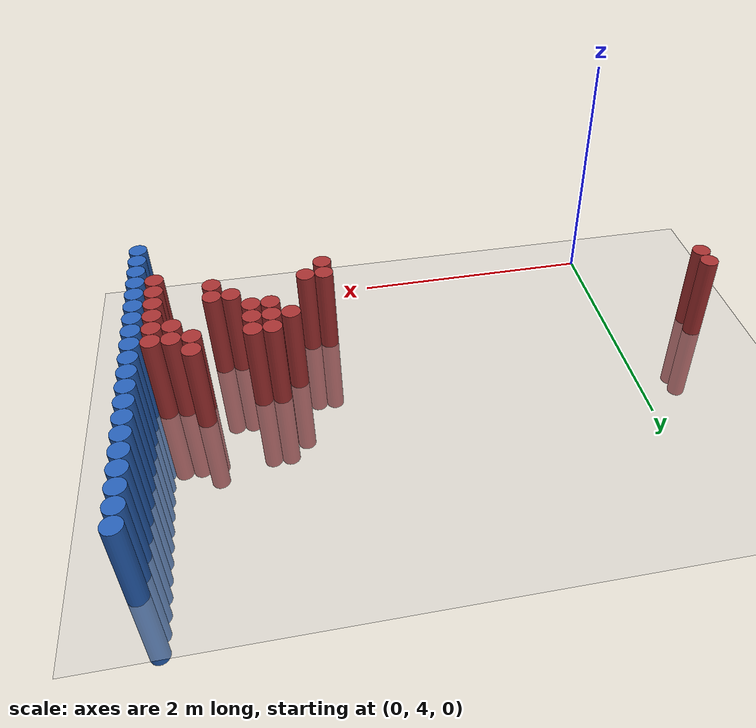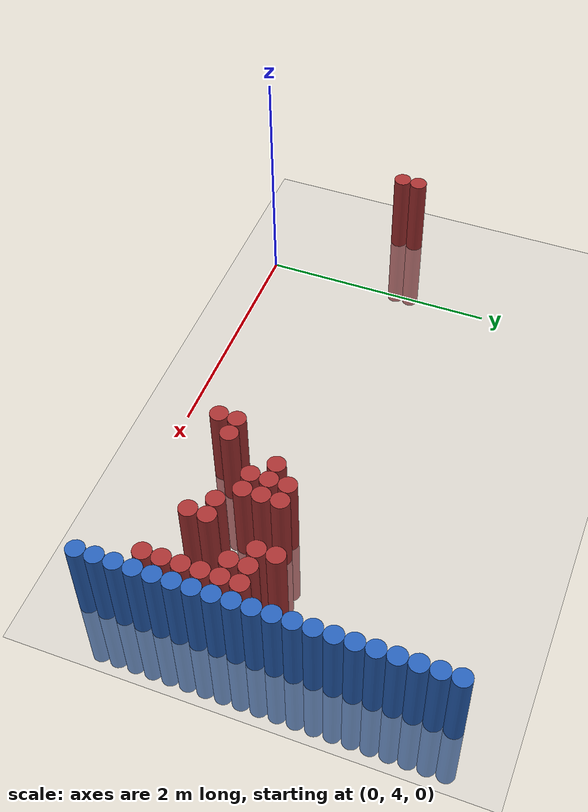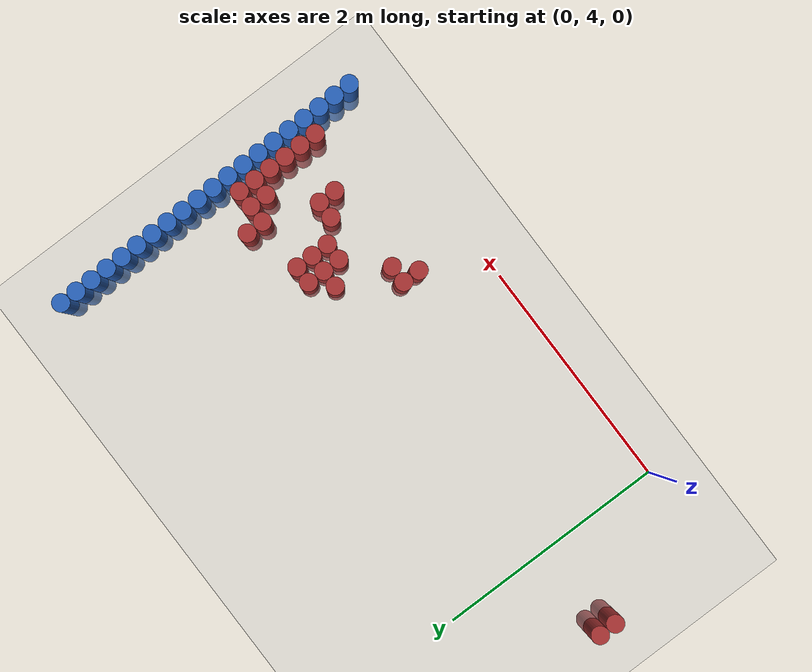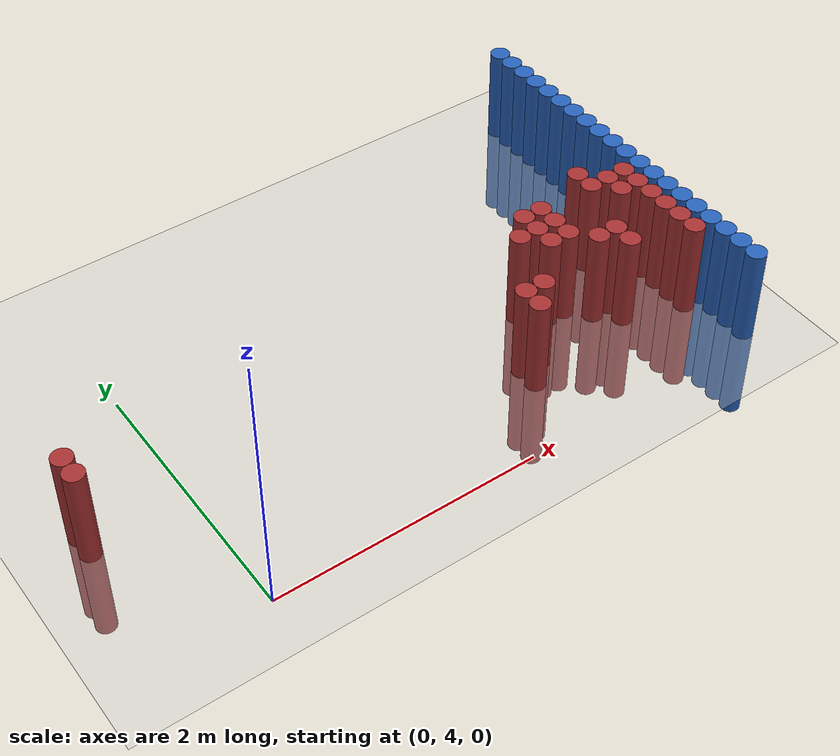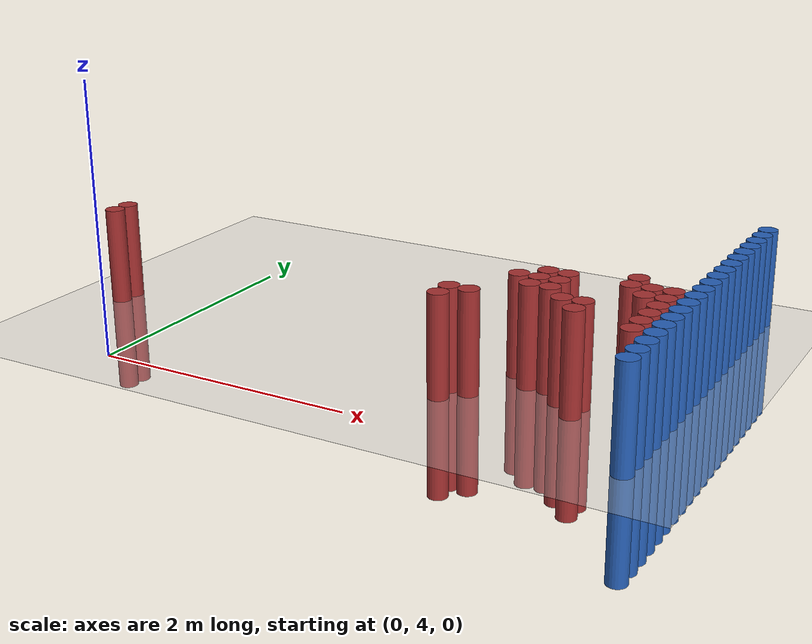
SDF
<sdf version="1.6">
 <world name="default">
  <model name="ground_plane">
   <static>1</static>
   <link name="link">
    <collision name="collision">
     <geometry><plane><normal>0 0 1</normal><size>100 100</size></plane></geometry>
     <surface><friction><ode><mu>100</mu><mu2>50</mu2></ode></friction></surface>
    </collision>
    <visual name="visual">
     <cast_shadows>0</cast_shadows>
     <geometry><plane><normal>0 0 1</normal><size>100 100</size></plane></geometry>
     <material>
      <script><uri>file://media/materials/scripts/gazebo.material</uri><name>Gazebo/Grey</name></script>
     </material>
    </visual>
   </link>
  </model>
  <model name="unit_cylinder_170">
   <static>1</static>
   <pose>3.925000 4.225000 0.000000 0.000000 0.000000 0.000000</pose>
   <link name="link">
    <inertial>
     <mass>1</mass>
     <inertia><ixx>0.145833</ixx><ixy>0</ixy><ixz>0</ixz><iyy>0.145833</iyy><iyz>0</iyz><izz>0.125</izz></inertia>
    </inertial>
    <collision name="collision">
     <geometry><cylinder><radius>0.075000</radius><length>1.5</length></cylinder></geometry>
    </collision>
    <visual name="visual">
     <geometry><cylinder><radius>0.075000</radius><length>1.5</length></cylinder></geometry>
     <material>
      <ambient>0.152000 0.379000 0.720000 1</ambient>
      <diffuse>0.152000 0.379000 0.720000 1</diffuse>
     </material>
     <material>
      <script><name>Gazebo/Grey</name><uri>file://media/materials/scripts/gazebo.material</uri></script>
     </material>
    </visual>
   </link>
  </model>
  <model name="unit_cylinder_172">
   <static>1</static>
   <pose>3.925000 4.375000 0.000000 0.000000 0.000000 0.000000</pose>
   <link name="link">
    <inertial>
     <mass>1</mass>
     <inertia><ixx>0.145833</ixx><ixy>0</ixy><ixz>0</ixz><iyy>0.145833</iyy><iyz>0</iyz><izz>0.125</izz></inertia>
    </inertial>
    <collision name="collision">
     <geometry><cylinder><radius>0.075000</radius><length>1.5</length></cylinder></geometry>
    </collision>
    <visual name="visual">
     <geometry><cylinder><radius>0.075000</radius><length>1.5</length></cylinder></geometry>
     <material>
      <ambient>0.152000 0.379000 0.720000 1</ambient>
      <diffuse>0.152000 0.379000 0.720000 1</diffuse>
     </material>
     <material>
      <script><name>Gazebo/Grey</name><uri>file://media/materials/scripts/gazebo.material</uri></script>
     </material>
    </visual>
   </link>
  </model>
  <model name="unit_cylinder_174">
   <static>1</static>
   <pose>3.925000 4.525000 0.000000 0.000000 0.000000 0.000000</pose>
   <link name="link">
    <inertial>
     <mass>1</mass>
     <inertia><ixx>0.145833</ixx><ixy>0</ixy><ixz>0</ixz><iyy>0.145833</iyy><iyz>0</iyz><izz>0.125</izz></inertia>
    </inertial>
    <collision name="collision">
     <geometry><cylinder><radius>0.075000</radius><length>1.5</length></cylinder></geometry>
    </collision>
    <visual name="visual">
     <geometry><cylinder><radius>0.075000</radius><length>1.5</length></cylinder></geometry>
     <material>
      <ambient>0.152000 0.379000 0.720000 1</ambient>
      <diffuse>0.152000 0.379000 0.720000 1</diffuse>
     </material>
     <material>
      <script><name>Gazebo/Grey</name><uri>file://media/materials/scripts/gazebo.material</uri></script>
     </material>
    </visual>
   </link>
  </model>
  <model name="unit_cylinder_176">
   <static>1</static>
   <pose>3.925000 4.675000 0.000000 0.000000 0.000000 0.000000</pose>
   <link name="link">
    <inertial>
     <mass>1</mass>
     <inertia><ixx>0.145833</ixx><ixy>0</ixy><ixz>0</ixz><iyy>0.145833</iyy><iyz>0</iyz><izz>0.125</izz></inertia>
    </inertial>
    <collision name="collision">
     <geometry><cylinder><radius>0.075000</radius><length>1.5</length></cylinder></geometry>
    </collision>
    <visual name="visual">
     <geometry><cylinder><radius>0.075000</radius><length>1.5</length></cylinder></geometry>
     <material>
      <ambient>0.152000 0.379000 0.720000 1</ambient>
      <diffuse>0.152000 0.379000 0.720000 1</diffuse>
     </material>
     <material>
      <script><name>Gazebo/Grey</name><uri>file://media/materials/scripts/gazebo.material</uri></script>
     </material>
    </visual>
   </link>
  </model>
  <model name="unit_cylinder_178">
   <static>1</static>
   <pose>3.925000 4.825000 0.000000 0.000000 0.000000 0.000000</pose>
   <link name="link">
    <inertial>
     <mass>1</mass>
     <inertia><ixx>0.145833</ixx><ixy>0</ixy><ixz>0</ixz><iyy>0.145833</iyy><iyz>0</iyz><izz>0.125</izz></inertia>
    </inertial>
    <collision name="collision">
     <geometry><cylinder><radius>0.075000</radius><length>1.5</length></cylinder></geometry>
    </collision>
    <visual name="visual">
     <geometry><cylinder><radius>0.075000</radius><length>1.5</length></cylinder></geometry>
     <material>
      <ambient>0.152000 0.379000 0.720000 1</ambient>
      <diffuse>0.152000 0.379000 0.720000 1</diffuse>
     </material>
     <material>
      <script><name>Gazebo/Grey</name><uri>file://media/materials/scripts/gazebo.material</uri></script>
     </material>
    </visual>
   </link>
  </model>
  <model name="unit_cylinder_180">
   <static>1</static>
   <pose>3.925000 4.975000 0.000000 0.000000 0.000000 0.000000</pose>
   <link name="link">
    <inertial>
     <mass>1</mass>
     <inertia><ixx>0.145833</ixx><ixy>0</ixy><ixz>0</ixz><iyy>0.145833</iyy><iyz>0</iyz><izz>0.125</izz></inertia>
    </inertial>
    <collision name="collision">
     <geometry><cylinder><radius>0.075000</radius><length>1.5</length></cylinder></geometry>
    </collision>
    <visual name="visual">
     <geometry><cylinder><radius>0.075000</radius><length>1.5</length></cylinder></geometry>
     <material>
      <ambient>0.152000 0.379000 0.720000 1</ambient>
      <diffuse>0.152000 0.379000 0.720000 1</diffuse>
     </material>
     <material>
      <script><name>Gazebo/Grey</name><uri>file://media/materials/scripts/gazebo.material</uri></script>
     </material>
    </visual>
   </link>
  </model>
  <model name="unit_cylinder_182">
   <static>1</static>
   <pose>3.925000 5.125000 0.000000 0.000000 0.000000 0.000000</pose>
   <link name="link">
    <inertial>
     <mass>1</mass>
     <inertia><ixx>0.145833</ixx><ixy>0</ixy><ixz>0</ixz><iyy>0.145833</iyy><iyz>0</iyz><izz>0.125</izz></inertia>
    </inertial>
    <collision name="collision">
     <geometry><cylinder><radius>0.075000</radius><length>1.5</length></cylinder></geometry>
    </collision>
    <visual name="visual">
     <geometry><cylinder><radius>0.075000</radius><length>1.5</length></cylinder></geometry>
     <material>
      <ambient>0.152000 0.379000 0.720000 1</ambient>
      <diffuse>0.152000 0.379000 0.720000 1</diffuse>
     </material>
     <material>
      <script><name>Gazebo/Grey</name><uri>file://media/materials/scripts/gazebo.material</uri></script>
     </material>
    </visual>
   </link>
  </model>
  <model name="unit_cylinder_184">
   <static>1</static>
   <pose>3.925000 5.275000 0.000000 0.000000 0.000000 0.000000</pose>
   <link name="link">
    <inertial>
     <mass>1</mass>
     <inertia><ixx>0.145833</ixx><ixy>0</ixy><ixz>0</ixz><iyy>0.145833</iyy><iyz>0</iyz><izz>0.125</izz></inertia>
    </inertial>
    <collision name="collision">
     <geometry><cylinder><radius>0.075000</radius><length>1.5</length></cylinder></geometry>
    </collision>
    <visual name="visual">
     <geometry><cylinder><radius>0.075000</radius><length>1.5</length></cylinder></geometry>
     <material>
      <ambient>0.152000 0.379000 0.720000 1</ambient>
      <diffuse>0.152000 0.379000 0.720000 1</diffuse>
     </material>
     <material>
      <script><name>Gazebo/Grey</name><uri>file://media/materials/scripts/gazebo.material</uri></script>
     </material>
    </visual>
   </link>
  </model>
  <model name="unit_cylinder_186">
   <static>1</static>
   <pose>3.925000 5.425000 0.000000 0.000000 0.000000 0.000000</pose>
   <link name="link">
    <inertial>
     <mass>1</mass>
     <inertia><ixx>0.145833</ixx><ixy>0</ixy><ixz>0</ixz><iyy>0.145833</iyy><iyz>0</iyz><izz>0.125</izz></inertia>
    </inertial>
    <collision name="collision">
     <geometry><cylinder><radius>0.075000</radius><length>1.5</length></cylinder></geometry>
    </collision>
    <visual name="visual">
     <geometry><cylinder><radius>0.075000</radius><length>1.5</length></cylinder></geometry>
     <material>
      <ambient>0.152000 0.379000 0.720000 1</ambient>
      <diffuse>0.152000 0.379000 0.720000 1</diffuse>
     </material>
     <material>
      <script><name>Gazebo/Grey</name><uri>file://media/materials/scripts/gazebo.material</uri></script>
     </material>
    </visual>
   </link>
  </model>
  <model name="unit_cylinder_188">
   <static>1</static>
   <pose>3.925000 5.575000 0.000000 0.000000 0.000000 0.000000</pose>
   <link name="link">
    <inertial>
     <mass>1</mass>
     <inertia><ixx>0.145833</ixx><ixy>0</ixy><ixz>0</ixz><iyy>0.145833</iyy><iyz>0</iyz><izz>0.125</izz></inertia>
    </inertial>
    <collision name="collision">
     <geometry><cylinder><radius>0.075000</radius><length>1.5</length></cylinder></geometry>
    </collision>
    <visual name="visual">
     <geometry><cylinder><radius>0.075000</radius><length>1.5</length></cylinder></geometry>
     <material>
      <ambient>0.152000 0.379000 0.720000 1</ambient>
      <diffuse>0.152000 0.379000 0.720000 1</diffuse>
     </material>
     <material>
      <script><name>Gazebo/Grey</name><uri>file://media/materials/scripts/gazebo.material</uri></script>
     </material>
    </visual>
   </link>
  </model>
  <model name="unit_cylinder_190">
   <static>1</static>
   <pose>3.925000 5.725000 0.000000 0.000000 0.000000 0.000000</pose>
   <link name="link">
    <inertial>
     <mass>1</mass>
     <inertia><ixx>0.145833</ixx><ixy>0</ixy><ixz>0</ixz><iyy>0.145833</iyy><iyz>0</iyz><izz>0.125</izz></inertia>
    </inertial>
    <collision name="collision">
     <geometry><cylinder><radius>0.075000</radius><length>1.5</length></cylinder></geometry>
    </collision>
    <visual name="visual">
     <geometry><cylinder><radius>0.075000</radius><length>1.5</length></cylinder></geometry>
     <material>
      <ambient>0.152000 0.379000 0.720000 1</ambient>
      <diffuse>0.152000 0.379000 0.720000 1</diffuse>
     </material>
     <material>
      <script><name>Gazebo/Grey</name><uri>file://media/materials/scripts/gazebo.material</uri></script>
     </material>
    </visual>
   </link>
  </model>
  <model name="unit_cylinder_192">
   <static>1</static>
   <pose>3.925000 5.875000 0.000000 0.000000 0.000000 0.000000</pose>
   <link name="link">
    <inertial>
     <mass>1</mass>
     <inertia><ixx>0.145833</ixx><ixy>0</ixy><ixz>0</ixz><iyy>0.145833</iyy><iyz>0</iyz><izz>0.125</izz></inertia>
    </inertial>
    <collision name="collision">
     <geometry><cylinder><radius>0.075000</radius><length>1.5</length></cylinder></geometry>
    </collision>
    <visual name="visual">
     <geometry><cylinder><radius>0.075000</radius><length>1.5</length></cylinder></geometry>
     <material>
      <ambient>0.152000 0.379000 0.720000 1</ambient>
      <diffuse>0.152000 0.379000 0.720000 1</diffuse>
     </material>
     <material>
      <script><name>Gazebo/Grey</name><uri>file://media/materials/scripts/gazebo.material</uri></script>
     </material>
    </visual>
   </link>
  </model>
  <model name="unit_cylinder_194">
   <static>1</static>
   <pose>3.925000 6.025000 0.000000 0.000000 0.000000 0.000000</pose>
   <link name="link">
    <inertial>
     <mass>1</mass>
     <inertia><ixx>0.145833</ixx><ixy>0</ixy><ixz>0</ixz><iyy>0.145833</iyy><iyz>0</iyz><izz>0.125</izz></inertia>
    </inertial>
    <collision name="collision">
     <geometry><cylinder><radius>0.075000</radius><length>1.5</length></cylinder></geometry>
    </collision>
    <visual name="visual">
     <geometry><cylinder><radius>0.075000</radius><length>1.5</length></cylinder></geometry>
     <material>
      <ambient>0.152000 0.379000 0.720000 1</ambient>
      <diffuse>0.152000 0.379000 0.720000 1</diffuse>
     </material>
     <material>
      <script><name>Gazebo/Grey</name><uri>file://media/materials/scripts/gazebo.material</uri></script>
     </material>
    </visual>
   </link>
  </model>
  <model name="unit_cylinder_196">
   <static>1</static>
   <pose>3.925000 6.175000 0.000000 0.000000 0.000000 0.000000</pose>
   <link name="link">
    <inertial>
     <mass>1</mass>
     <inertia><ixx>0.145833</ixx><ixy>0</ixy><ixz>0</ixz><iyy>0.145833</iyy><iyz>0</iyz><izz>0.125</izz></inertia>
    </inertial>
    <collision name="collision">
     <geometry><cylinder><radius>0.075000</radius><length>1.5</length></cylinder></geometry>
    </collision>
    <visual name="visual">
     <geometry><cylinder><radius>0.075000</radius><length>1.5</length></cylinder></geometry>
     <material>
      <ambient>0.152000 0.379000 0.720000 1</ambient>
      <diffuse>0.152000 0.379000 0.720000 1</diffuse>
     </material>
     <material>
      <script><name>Gazebo/Grey</name><uri>file://media/materials/scripts/gazebo.material</uri></script>
     </material>
    </visual>
   </link>
  </model>
  <model name="unit_cylinder_198">
   <static>1</static>
   <pose>3.925000 6.325000 0.000000 0.000000 0.000000 0.000000</pose>
   <link name="link">
    <inertial>
     <mass>1</mass>
     <inertia><ixx>0.145833</ixx><ixy>0</ixy><ixz>0</ixz><iyy>0.145833</iyy><iyz>0</iyz><izz>0.125</izz></inertia>
    </inertial>
    <collision name="collision">
     <geometry><cylinder><radius>0.075000</radius><length>1.5</length></cylinder></geometry>
    </collision>
    <visual name="visual">
     <geometry><cylinder><radius>0.075000</radius><length>1.5</length></cylinder></geometry>
     <material>
      <ambient>0.152000 0.379000 0.720000 1</ambient>
      <diffuse>0.152000 0.379000 0.720000 1</diffuse>
     </material>
     <material>
      <script><name>Gazebo/Grey</name><uri>file://media/materials/scripts/gazebo.material</uri></script>
     </material>
    </visual>
   </link>
  </model>
  <model name="unit_cylinder_200">
   <static>1</static>
   <pose>3.925000 6.475000 0.000000 0.000000 0.000000 0.000000</pose>
   <link name="link">
    <inertial>
     <mass>1</mass>
     <inertia><ixx>0.145833</ixx><ixy>0</ixy><ixz>0</ixz><iyy>0.145833</iyy><iyz>0</iyz><izz>0.125</izz></inertia>
    </inertial>
    <collision name="collision">
     <geometry><cylinder><radius>0.075000</radius><length>1.5</length></cylinder></geometry>
    </collision>
    <visual name="visual">
     <geometry><cylinder><radius>0.075000</radius><length>1.5</length></cylinder></geometry>
     <material>
      <ambient>0.152000 0.379000 0.720000 1</ambient>
      <diffuse>0.152000 0.379000 0.720000 1</diffuse>
     </material>
     <material>
      <script><name>Gazebo/Grey</name><uri>file://media/materials/scripts/gazebo.material</uri></script>
     </material>
    </visual>
   </link>
  </model>
  <model name="unit_cylinder_202">
   <static>1</static>
   <pose>3.925000 6.625000 0.000000 0.000000 0.000000 0.000000</pose>
   <link name="link">
    <inertial>
     <mass>1</mass>
     <inertia><ixx>0.145833</ixx><ixy>0</ixy><ixz>0</ixz><iyy>0.145833</iyy><iyz>0</iyz><izz>0.125</izz></inertia>
    </inertial>
    <collision name="collision">
     <geometry><cylinder><radius>0.075000</radius><length>1.5</length></cylinder></geometry>
    </collision>
    <visual name="visual">
     <geometry><cylinder><radius>0.075000</radius><length>1.5</length></cylinder></geometry>
     <material>
      <ambient>0.152000 0.379000 0.720000 1</ambient>
      <diffuse>0.152000 0.379000 0.720000 1</diffuse>
     </material>
     <material>
      <script><name>Gazebo/Grey</name><uri>file://media/materials/scripts/gazebo.material</uri></script>
     </material>
    </visual>
   </link>
  </model>
  <model name="unit_cylinder_204">
   <static>1</static>
   <pose>3.925000 6.775000 0.000000 0.000000 0.000000 0.000000</pose>
   <link name="link">
    <inertial>
     <mass>1</mass>
     <inertia><ixx>0.145833</ixx><ixy>0</ixy><ixz>0</ixz><iyy>0.145833</iyy><iyz>0</iyz><izz>0.125</izz></inertia>
    </inertial>
    <collision name="collision">
     <geometry><cylinder><radius>0.075000</radius><length>1.5</length></cylinder></geometry>
    </collision>
    <visual name="visual">
     <geometry><cylinder><radius>0.075000</radius><length>1.5</length></cylinder></geometry>
     <material>
      <ambient>0.152000 0.379000 0.720000 1</ambient>
      <diffuse>0.152000 0.379000 0.720000 1</diffuse>
     </material>
     <material>
      <script><name>Gazebo/Grey</name><uri>file://media/materials/scripts/gazebo.material</uri></script>
     </material>
    </visual>
   </link>
  </model>
  <model name="unit_cylinder_206">
   <static>1</static>
   <pose>3.925000 6.925000 0.000000 0.000000 0.000000 0.000000</pose>
   <link name="link">
    <inertial>
     <mass>1</mass>
     <inertia><ixx>0.145833</ixx><ixy>0</ixy><ixz>0</ixz><iyy>0.145833</iyy><iyz>0</iyz><izz>0.125</izz></inertia>
    </inertial>
    <collision name="collision">
     <geometry><cylinder><radius>0.075000</radius><length>1.5</length></cylinder></geometry>
    </collision>
    <visual name="visual">
     <geometry><cylinder><radius>0.075000</radius><length>1.5</length></cylinder></geometry>
     <material>
      <ambient>0.152000 0.379000 0.720000 1</ambient>
      <diffuse>0.152000 0.379000 0.720000 1</diffuse>
     </material>
     <material>
      <script><name>Gazebo/Grey</name><uri>file://media/materials/scripts/gazebo.material</uri></script>
     </material>
    </visual>
   </link>
  </model>
  <model name="unit_cylinder_315">
   <static>1</static>
   <pose>-0.725000 4.975000 0.000000 0.000000 0.000000 0.000000</pose>
   <link name="link">
    <inertial>
     <mass>1</mass>
     <inertia><ixx>0.145833</ixx><ixy>0</ixy><ixz>0</ixz><iyy>0.145833</iyy><iyz>0</iyz><izz>0.125</izz></inertia>
    </inertial>
    <collision name="collision">
     <geometry><cylinder><radius>0.075000</radius><length>1.5</length></cylinder></geometry>
    </collision>
    <visual name="visual">
     <geometry><cylinder><radius>0.075000</radius><length>1.5</length></cylinder></geometry>
     <material>
      <ambient>0.648000 0.192000 0.192000 1</ambient>
      <diffuse>0.648000 0.192000 0.192000 1</diffuse>
     </material>
     <material>
      <script><name>Gazebo/Grey</name><uri>file://media/materials/scripts/gazebo.material</uri></script>
     </material>
    </visual>
   </link>
  </model>
  <model name="unit_cylinder_316">
   <static>1</static>
   <pose>-0.725000 5.125000 0.000000 0.000000 0.000000 0.000000</pose>
   <link name="link">
    <inertial>
     <mass>1</mass>
     <inertia><ixx>0.145833</ixx><ixy>0</ixy><ixz>0</ixz><iyy>0.145833</iyy><iyz>0</iyz><izz>0.125</izz></inertia>
    </inertial>
    <collision name="collision">
     <geometry><cylinder><radius>0.075000</radius><length>1.5</length></cylinder></geometry>
    </collision>
    <visual name="visual">
     <geometry><cylinder><radius>0.075000</radius><length>1.5</length></cylinder></geometry>
     <material>
      <ambient>0.648000 0.192000 0.192000 1</ambient>
      <diffuse>0.648000 0.192000 0.192000 1</diffuse>
     </material>
     <material>
      <script><name>Gazebo/Grey</name><uri>file://media/materials/scripts/gazebo.material</uri></script>
     </material>
    </visual>
   </link>
  </model>
  <model name="unit_cylinder_395">
   <static>1</static>
   <pose>2.425000 4.525000 0.000000 0.000000 0.000000 0.000000</pose>
   <link name="link">
    <inertial>
     <mass>1</mass>
     <inertia><ixx>0.145833</ixx><ixy>0</ixy><ixz>0</ixz><iyy>0.145833</iyy><iyz>0</iyz><izz>0.125</izz></inertia>
    </inertial>
    <collision name="collision">
     <geometry><cylinder><radius>0.075000</radius><length>1.5</length></cylinder></geometry>
    </collision>
    <visual name="visual">
     <geometry><cylinder><radius>0.075000</radius><length>1.5</length></cylinder></geometry>
     <material>
      <ambient>0.648000 0.192000 0.192000 1</ambient>
      <diffuse>0.648000 0.192000 0.192000 1</diffuse>
     </material>
     <material>
      <script><name>Gazebo/Grey</name><uri>file://media/materials/scripts/gazebo.material</uri></script>
     </material>
    </visual>
   </link>
  </model>
  <model name="unit_cylinder_396">
   <static>1</static>
   <pose>2.425000 4.675000 0.000000 0.000000 0.000000 0.000000</pose>
   <link name="link">
    <inertial>
     <mass>1</mass>
     <inertia><ixx>0.145833</ixx><ixy>0</ixy><ixz>0</ixz><iyy>0.145833</iyy><iyz>0</iyz><izz>0.125</izz></inertia>
    </inertial>
    <collision name="collision">
     <geometry><cylinder><radius>0.075000</radius><length>1.5</length></cylinder></geometry>
    </collision>
    <visual name="visual">
     <geometry><cylinder><radius>0.075000</radius><length>1.5</length></cylinder></geometry>
     <material>
      <ambient>0.648000 0.192000 0.192000 1</ambient>
      <diffuse>0.648000 0.192000 0.192000 1</diffuse>
     </material>
     <material>
      <script><name>Gazebo/Grey</name><uri>file://media/materials/scripts/gazebo.material</uri></script>
     </material>
    </visual>
   </link>
  </model>
  <model name="unit_cylinder_397">
   <static>1</static>
   <pose>2.575000 4.675000 0.000000 0.000000 0.000000 0.000000</pose>
   <link name="link">
    <inertial>
     <mass>1</mass>
     <inertia><ixx>0.145833</ixx><ixy>0</ixy><ixz>0</ixz><iyy>0.145833</iyy><iyz>0</iyz><izz>0.125</izz></inertia>
    </inertial>
    <collision name="collision">
     <geometry><cylinder><radius>0.075000</radius><length>1.5</length></cylinder></geometry>
    </collision>
    <visual name="visual">
     <geometry><cylinder><radius>0.075000</radius><length>1.5</length></cylinder></geometry>
     <material>
      <ambient>0.648000 0.192000 0.192000 1</ambient>
      <diffuse>0.648000 0.192000 0.192000 1</diffuse>
     </material>
     <material>
      <script><name>Gazebo/Grey</name><uri>file://media/materials/scripts/gazebo.material</uri></script>
     </material>
    </visual>
   </link>
  </model>
  <model name="unit_cylinder_398">
   <static>1</static>
   <pose>2.725000 5.125000 0.000000 0.000000 0.000000 0.000000</pose>
   <link name="link">
    <inertial>
     <mass>1</mass>
     <inertia><ixx>0.145833</ixx><ixy>0</ixy><ixz>0</ixz><iyy>0.145833</iyy><iyz>0</iyz><izz>0.125</izz></inertia>
    </inertial>
    <collision name="collision">
     <geometry><cylinder><radius>0.075000</radius><length>1.5</length></cylinder></geometry>
    </collision>
    <visual name="visual">
     <geometry><cylinder><radius>0.075000</radius><length>1.5</length></cylinder></geometry>
     <material>
      <ambient>0.648000 0.192000 0.192000 1</ambient>
      <diffuse>0.648000 0.192000 0.192000 1</diffuse>
     </material>
     <material>
      <script><name>Gazebo/Grey</name><uri>file://media/materials/scripts/gazebo.material</uri></script>
     </material>
    </visual>
   </link>
  </model>
  <model name="unit_cylinder_400">
   <static>1</static>
   <pose>2.875000 4.975000 0.000000 0.000000 0.000000 0.000000</pose>
   <link name="link">
    <inertial>
     <mass>1</mass>
     <inertia><ixx>0.145833</ixx><ixy>0</ixy><ixz>0</ixz><iyy>0.145833</iyy><iyz>0</iyz><izz>0.125</izz></inertia>
    </inertial>
    <collision name="collision">
     <geometry><cylinder><radius>0.075000</radius><length>1.5</length></cylinder></geometry>
    </collision>
    <visual name="visual">
     <geometry><cylinder><radius>0.075000</radius><length>1.5</length></cylinder></geometry>
     <material>
      <ambient>0.648000 0.192000 0.192000 1</ambient>
      <diffuse>0.648000 0.192000 0.192000 1</diffuse>
     </material>
     <material>
      <script><name>Gazebo/Grey</name><uri>file://media/materials/scripts/gazebo.material</uri></script>
     </material>
    </visual>
   </link>
  </model>
  <model name="unit_cylinder_401">
   <static>1</static>
   <pose>2.875000 5.125000 0.000000 0.000000 0.000000 0.000000</pose>
   <link name="link">
    <inertial>
     <mass>1</mass>
     <inertia><ixx>0.145833</ixx><ixy>0</ixy><ixz>0</ixz><iyy>0.145833</iyy><iyz>0</iyz><izz>0.125</izz></inertia>
    </inertial>
    <collision name="collision">
     <geometry><cylinder><radius>0.075000</radius><length>1.5</length></cylinder></geometry>
    </collision>
    <visual name="visual">
     <geometry><cylinder><radius>0.075000</radius><length>1.5</length></cylinder></geometry>
     <material>
      <ambient>0.648000 0.192000 0.192000 1</ambient>
      <diffuse>0.648000 0.192000 0.192000 1</diffuse>
     </material>
     <material>
      <script><name>Gazebo/Grey</name><uri>file://media/materials/scripts/gazebo.material</uri></script>
     </material>
    </visual>
   </link>
  </model>
  <model name="unit_cylinder_402">
   <static>1</static>
   <pose>2.875000 5.275000 0.000000 0.000000 0.000000 0.000000</pose>
   <link name="link">
    <inertial>
     <mass>1</mass>
     <inertia><ixx>0.145833</ixx><ixy>0</ixy><ixz>0</ixz><iyy>0.145833</iyy><iyz>0</iyz><izz>0.125</izz></inertia>
    </inertial>
    <collision name="collision">
     <geometry><cylinder><radius>0.075000</radius><length>1.5</length></cylinder></geometry>
    </collision>
    <visual name="visual">
     <geometry><cylinder><radius>0.075000</radius><length>1.5</length></cylinder></geometry>
     <material>
      <ambient>0.648000 0.192000 0.192000 1</ambient>
      <diffuse>0.648000 0.192000 0.192000 1</diffuse>
     </material>
     <material>
      <script><name>Gazebo/Grey</name><uri>file://media/materials/scripts/gazebo.material</uri></script>
     </material>
    </visual>
   </link>
  </model>
  <model name="unit_cylinder_408">
   <static>1</static>
   <pose>3.025000 4.975000 0.000000 0.000000 0.000000 0.000000</pose>
   <link name="link">
    <inertial>
     <mass>1</mass>
     <inertia><ixx>0.145833</ixx><ixy>0</ixy><ixz>0</ixz><iyy>0.145833</iyy><iyz>0</iyz><izz>0.125</izz></inertia>
    </inertial>
    <collision name="collision">
     <geometry><cylinder><radius>0.075000</radius><length>1.5</length></cylinder></geometry>
    </collision>
    <visual name="visual">
     <geometry><cylinder><radius>0.075000</radius><length>1.5</length></cylinder></geometry>
     <material>
      <ambient>0.648000 0.192000 0.192000 1</ambient>
      <diffuse>0.648000 0.192000 0.192000 1</diffuse>
     </material>
     <material>
      <script><name>Gazebo/Grey</name><uri>file://media/materials/scripts/gazebo.material</uri></script>
     </material>
    </visual>
   </link>
  </model>
  <model name="unit_cylinder_409">
   <static>1</static>
   <pose>3.025000 5.125000 0.000000 0.000000 0.000000 0.000000</pose>
   <link name="link">
    <inertial>
     <mass>1</mass>
     <inertia><ixx>0.145833</ixx><ixy>0</ixy><ixz>0</ixz><iyy>0.145833</iyy><iyz>0</iyz><izz>0.125</izz></inertia>
    </inertial>
    <collision name="collision">
     <geometry><cylinder><radius>0.075000</radius><length>1.5</length></cylinder></geometry>
    </collision>
    <visual name="visual">
     <geometry><cylinder><radius>0.075000</radius><length>1.5</length></cylinder></geometry>
     <material>
      <ambient>0.648000 0.192000 0.192000 1</ambient>
      <diffuse>0.648000 0.192000 0.192000 1</diffuse>
     </material>
     <material>
      <script><name>Gazebo/Grey</name><uri>file://media/materials/scripts/gazebo.material</uri></script>
     </material>
    </visual>
   </link>
  </model>
  <model name="unit_cylinder_410">
   <static>1</static>
   <pose>3.025000 5.275000 0.000000 0.000000 0.000000 0.000000</pose>
   <link name="link">
    <inertial>
     <mass>1</mass>
     <inertia><ixx>0.145833</ixx><ixy>0</ixy><ixz>0</ixz><iyy>0.145833</iyy><iyz>0</iyz><izz>0.125</izz></inertia>
    </inertial>
    <collision name="collision">
     <geometry><cylinder><radius>0.075000</radius><length>1.5</length></cylinder></geometry>
    </collision>
    <visual name="visual">
     <geometry><cylinder><radius>0.075000</radius><length>1.5</length></cylinder></geometry>
     <material>
      <ambient>0.648000 0.192000 0.192000 1</ambient>
      <diffuse>0.648000 0.192000 0.192000 1</diffuse>
     </material>
     <material>
      <script><name>Gazebo/Grey</name><uri>file://media/materials/scripts/gazebo.material</uri></script>
     </material>
    </visual>
   </link>
  </model>
  <model name="unit_cylinder_414">
   <static>1</static>
   <pose>3.175000 4.825000 0.000000 0.000000 0.000000 0.000000</pose>
   <link name="link">
    <inertial>
     <mass>1</mass>
     <inertia><ixx>0.145833</ixx><ixy>0</ixy><ixz>0</ixz><iyy>0.145833</iyy><iyz>0</iyz><izz>0.125</izz></inertia>
    </inertial>
    <collision name="collision">
     <geometry><cylinder><radius>0.075000</radius><length>1.5</length></cylinder></geometry>
    </collision>
    <visual name="visual">
     <geometry><cylinder><radius>0.075000</radius><length>1.5</length></cylinder></geometry>
     <material>
      <ambient>0.648000 0.192000 0.192000 1</ambient>
      <diffuse>0.648000 0.192000 0.192000 1</diffuse>
     </material>
     <material>
      <script><name>Gazebo/Grey</name><uri>file://media/materials/scripts/gazebo.material</uri></script>
     </material>
    </visual>
   </link>
  </model>
  <model name="unit_cylinder_415">
   <static>1</static>
   <pose>3.325000 4.675000 0.000000 0.000000 0.000000 0.000000</pose>
   <link name="link">
    <inertial>
     <mass>1</mass>
     <inertia><ixx>0.145833</ixx><ixy>0</ixy><ixz>0</ixz><iyy>0.145833</iyy><iyz>0</iyz><izz>0.125</izz></inertia>
    </inertial>
    <collision name="collision">
     <geometry><cylinder><radius>0.075000</radius><length>1.5</length></cylinder></geometry>
    </collision>
    <visual name="visual">
     <geometry><cylinder><radius>0.075000</radius><length>1.5</length></cylinder></geometry>
     <material>
      <ambient>0.648000 0.192000 0.192000 1</ambient>
      <diffuse>0.648000 0.192000 0.192000 1</diffuse>
     </material>
     <material>
      <script><name>Gazebo/Grey</name><uri>file://media/materials/scripts/gazebo.material</uri></script>
     </material>
    </visual>
   </link>
  </model>
  <model name="unit_cylinder_416">
   <static>1</static>
   <pose>3.325000 4.825000 0.000000 0.000000 0.000000 0.000000</pose>
   <link name="link">
    <inertial>
     <mass>1</mass>
     <inertia><ixx>0.145833</ixx><ixy>0</ixy><ixz>0</ixz><iyy>0.145833</iyy><iyz>0</iyz><izz>0.125</izz></inertia>
    </inertial>
    <collision name="collision">
     <geometry><cylinder><radius>0.075000</radius><length>1.5</length></cylinder></geometry>
    </collision>
    <visual name="visual">
     <geometry><cylinder><radius>0.075000</radius><length>1.5</length></cylinder></geometry>
     <material>
      <ambient>0.648000 0.192000 0.192000 1</ambient>
      <diffuse>0.648000 0.192000 0.192000 1</diffuse>
     </material>
     <material>
      <script><name>Gazebo/Grey</name><uri>file://media/materials/scripts/gazebo.material</uri></script>
     </material>
    </visual>
   </link>
  </model>
  <model name="unit_cylinder_417">
   <static>1</static>
   <pose>3.475000 5.275000 0.000000 0.000000 0.000000 0.000000</pose>
   <link name="link">
    <inertial>
     <mass>1</mass>
     <inertia><ixx>0.145833</ixx><ixy>0</ixy><ixz>0</ixz><iyy>0.145833</iyy><iyz>0</iyz><izz>0.125</izz></inertia>
    </inertial>
    <collision name="collision">
     <geometry><cylinder><radius>0.075000</radius><length>1.5</length></cylinder></geometry>
    </collision>
    <visual name="visual">
     <geometry><cylinder><radius>0.075000</radius><length>1.5</length></cylinder></geometry>
     <material>
      <ambient>0.648000 0.192000 0.192000 1</ambient>
      <diffuse>0.648000 0.192000 0.192000 1</diffuse>
     </material>
     <material>
      <script><name>Gazebo/Grey</name><uri>file://media/materials/scripts/gazebo.material</uri></script>
     </material>
    </visual>
   </link>
  </model>
  <model name="unit_cylinder_418">
   <static>1</static>
   <pose>3.475000 5.425000 0.000000 0.000000 0.000000 0.000000</pose>
   <link name="link">
    <inertial>
     <mass>1</mass>
     <inertia><ixx>0.145833</ixx><ixy>0</ixy><ixz>0</ixz><iyy>0.145833</iyy><iyz>0</iyz><izz>0.125</izz></inertia>
    </inertial>
    <collision name="collision">
     <geometry><cylinder><radius>0.075000</radius><length>1.5</length></cylinder></geometry>
    </collision>
    <visual name="visual">
     <geometry><cylinder><radius>0.075000</radius><length>1.5</length></cylinder></geometry>
     <material>
      <ambient>0.648000 0.192000 0.192000 1</ambient>
      <diffuse>0.648000 0.192000 0.192000 1</diffuse>
     </material>
     <material>
      <script><name>Gazebo/Grey</name><uri>file://media/materials/scripts/gazebo.material</uri></script>
     </material>
    </visual>
   </link>
  </model>
  <model name="unit_cylinder_420">
   <static>1</static>
   <pose>3.625000 5.125000 0.000000 0.000000 0.000000 0.000000</pose>
   <link name="link">
    <inertial>
     <mass>1</mass>
     <inertia><ixx>0.145833</ixx><ixy>0</ixy><ixz>0</ixz><iyy>0.145833</iyy><iyz>0</iyz><izz>0.125</izz></inertia>
    </inertial>
    <collision name="collision">
     <geometry><cylinder><radius>0.075000</radius><length>1.5</length></cylinder></geometry>
    </collision>
    <visual name="visual">
     <geometry><cylinder><radius>0.075000</radius><length>1.5</length></cylinder></geometry>
     <material>
      <ambient>0.648000 0.192000 0.192000 1</ambient>
      <diffuse>0.648000 0.192000 0.192000 1</diffuse>
     </material>
     <material>
      <script><name>Gazebo/Grey</name><uri>file://media/materials/scripts/gazebo.material</uri></script>
     </material>
    </visual>
   </link>
  </model>
  <model name="unit_cylinder_421">
   <static>1</static>
   <pose>3.625000 5.275000 0.000000 0.000000 0.000000 0.000000</pose>
   <link name="link">
    <inertial>
     <mass>1</mass>
     <inertia><ixx>0.145833</ixx><ixy>0</ixy><ixz>0</ixz><iyy>0.145833</iyy><iyz>0</iyz><izz>0.125</izz></inertia>
    </inertial>
    <collision name="collision">
     <geometry><cylinder><radius>0.075000</radius><length>1.5</length></cylinder></geometry>
    </collision>
    <visual name="visual">
     <geometry><cylinder><radius>0.075000</radius><length>1.5</length></cylinder></geometry>
     <material>
      <ambient>0.648000 0.192000 0.192000 1</ambient>
      <diffuse>0.648000 0.192000 0.192000 1</diffuse>
     </material>
     <material>
      <script><name>Gazebo/Grey</name><uri>file://media/materials/scripts/gazebo.material</uri></script>
     </material>
    </visual>
   </link>
  </model>
  <model name="unit_cylinder_434">
   <static>1</static>
   <pose>3.775000 4.525000 0.000000 0.000000 0.000000 0.000000</pose>
   <link name="link">
    <inertial>
     <mass>1</mass>
     <inertia><ixx>0.145833</ixx><ixy>0</ixy><ixz>0</ixz><iyy>0.145833</iyy><iyz>0</iyz><izz>0.125</izz></inertia>
    </inertial>
    <collision name="collision">
     <geometry><cylinder><radius>0.075000</radius><length>1.5</length></cylinder></geometry>
    </collision>
    <visual name="visual">
     <geometry><cylinder><radius>0.075000</radius><length>1.5</length></cylinder></geometry>
     <material>
      <ambient>0.648000 0.192000 0.192000 1</ambient>
      <diffuse>0.648000 0.192000 0.192000 1</diffuse>
     </material>
     <material>
      <script><name>Gazebo/Grey</name><uri>file://media/materials/scripts/gazebo.material</uri></script>
     </material>
    </visual>
   </link>
  </model>
  <model name="unit_cylinder_435">
   <static>1</static>
   <pose>3.775000 4.675000 0.000000 0.000000 0.000000 0.000000</pose>
   <link name="link">
    <inertial>
     <mass>1</mass>
     <inertia><ixx>0.145833</ixx><ixy>0</ixy><ixz>0</ixz><iyy>0.145833</iyy><iyz>0</iyz><izz>0.125</izz></inertia>
    </inertial>
    <collision name="collision">
     <geometry><cylinder><radius>0.075000</radius><length>1.5</length></cylinder></geometry>
    </collision>
    <visual name="visual">
     <geometry><cylinder><radius>0.075000</radius><length>1.5</length></cylinder></geometry>
     <material>
      <ambient>0.648000 0.192000 0.192000 1</ambient>
      <diffuse>0.648000 0.192000 0.192000 1</diffuse>
     </material>
     <material>
      <script><name>Gazebo/Grey</name><uri>file://media/materials/scripts/gazebo.material</uri></script>
     </material>
    </visual>
   </link>
  </model>
  <model name="unit_cylinder_436">
   <static>1</static>
   <pose>3.775000 4.825000 0.000000 0.000000 0.000000 0.000000</pose>
   <link name="link">
    <inertial>
     <mass>1</mass>
     <inertia><ixx>0.145833</ixx><ixy>0</ixy><ixz>0</ixz><iyy>0.145833</iyy><iyz>0</iyz><izz>0.125</izz></inertia>
    </inertial>
    <collision name="collision">
     <geometry><cylinder><radius>0.075000</radius><length>1.5</length></cylinder></geometry>
    </collision>
    <visual name="visual">
     <geometry><cylinder><radius>0.075000</radius><length>1.5</length></cylinder></geometry>
     <material>
      <ambient>0.648000 0.192000 0.192000 1</ambient>
      <diffuse>0.648000 0.192000 0.192000 1</diffuse>
     </material>
     <material>
      <script><name>Gazebo/Grey</name><uri>file://media/materials/scripts/gazebo.material</uri></script>
     </material>
    </visual>
   </link>
  </model>
  <model name="unit_cylinder_437">
   <static>1</static>
   <pose>3.775000 4.975000 0.000000 0.000000 0.000000 0.000000</pose>
   <link name="link">
    <inertial>
     <mass>1</mass>
     <inertia><ixx>0.145833</ixx><ixy>0</ixy><ixz>0</ixz><iyy>0.145833</iyy><iyz>0</iyz><izz>0.125</izz></inertia>
    </inertial>
    <collision name="collision">
     <geometry><cylinder><radius>0.075000</radius><length>1.5</length></cylinder></geometry>
    </collision>
    <visual name="visual">
     <geometry><cylinder><radius>0.075000</radius><length>1.5</length></cylinder></geometry>
     <material>
      <ambient>0.648000 0.192000 0.192000 1</ambient>
      <diffuse>0.648000 0.192000 0.192000 1</diffuse>
     </material>
     <material>
      <script><name>Gazebo/Grey</name><uri>file://media/materials/scripts/gazebo.material</uri></script>
     </material>
    </visual>
   </link>
  </model>
  <model name="unit_cylinder_438">
   <static>1</static>
   <pose>3.775000 5.125000 0.000000 0.000000 0.000000 0.000000</pose>
   <link name="link">
    <inertial>
     <mass>1</mass>
     <inertia><ixx>0.145833</ixx><ixy>0</ixy><ixz>0</ixz><iyy>0.145833</iyy><iyz>0</iyz><izz>0.125</izz></inertia>
    </inertial>
    <collision name="collision">
     <geometry><cylinder><radius>0.075000</radius><length>1.5</length></cylinder></geometry>
    </collision>
    <visual name="visual">
     <geometry><cylinder><radius>0.075000</radius><length>1.5</length></cylinder></geometry>
     <material>
      <ambient>0.648000 0.192000 0.192000 1</ambient>
      <diffuse>0.648000 0.192000 0.192000 1</diffuse>
     </material>
     <material>
      <script><name>Gazebo/Grey</name><uri>file://media/materials/scripts/gazebo.material</uri></script>
     </material>
    </visual>
   </link>
  </model>
  <model name="unit_cylinder_439">
   <static>1</static>
   <pose>3.775000 5.275000 0.000000 0.000000 0.000000 0.000000</pose>
   <link name="link">
    <inertial>
     <mass>1</mass>
     <inertia><ixx>0.145833</ixx><ixy>0</ixy><ixz>0</ixz><iyy>0.145833</iyy><iyz>0</iyz><izz>0.125</izz></inertia>
    </inertial>
    <collision name="collision">
     <geometry><cylinder><radius>0.075000</radius><length>1.5</length></cylinder></geometry>
    </collision>
    <visual name="visual">
     <geometry><cylinder><radius>0.075000</radius><length>1.5</length></cylinder></geometry>
     <material>
      <ambient>0.648000 0.192000 0.192000 1</ambient>
      <diffuse>0.648000 0.192000 0.192000 1</diffuse>
     </material>
     <material>
      <script><name>Gazebo/Grey</name><uri>file://media/materials/scripts/gazebo.material</uri></script>
     </material>
    </visual>
   </link>
  </model>
  <model name="unit_cylinder_480">
   <static>1</static>
   <pose>3.925000 4.075000 0.000000 0.000000 0.000000 0.000000</pose>
   <link name="link">
    <inertial>
     <mass>1</mass>
     <inertia><ixx>0.145833</ixx><ixy>0</ixy><ixz>0</ixz><iyy>0.145833</iyy><iyz>0</iyz><izz>0.125</izz></inertia>
    </inertial>
    <collision name="collision">
     <geometry><cylinder><radius>0.075000</radius><length>1.5</length></cylinder></geometry>
    </collision>
    <visual name="visual">
     <geometry><cylinder><radius>0.075000</radius><length>1.5</length></cylinder></geometry>
     <material>
      <ambient>0.152000 0.379000 0.720000 1</ambient>
      <diffuse>0.152000 0.379000 0.720000 1</diffuse>
     </material>
     <material>
      <script><name>Gazebo/Grey</name><uri>file://media/materials/scripts/gazebo.material</uri></script>
     </material>
    </visual>
   </link>
  </model>
  <model name="unit_cylinder_481">
   <static>1</static>
   <pose>3.925000 4.225000 0.000000 0.000000 0.000000 0.000000</pose>
   <link name="link">
    <inertial>
     <mass>1</mass>
     <inertia><ixx>0.145833</ixx><ixy>0</ixy><ixz>0</ixz><iyy>0.145833</iyy><iyz>0</iyz><izz>0.125</izz></inertia>
    </inertial>
    <collision name="collision">
     <geometry><cylinder><radius>0.075000</radius><length>1.5</length></cylinder></geometry>
    </collision>
    <visual name="visual">
     <geometry><cylinder><radius>0.075000</radius><length>1.5</length></cylinder></geometry>
     <material>
      <ambient>0.152000 0.379000 0.720000 1</ambient>
      <diffuse>0.152000 0.379000 0.720000 1</diffuse>
     </material>
     <material>
      <script><name>Gazebo/Grey</name><uri>file://media/materials/scripts/gazebo.material</uri></script>
     </material>
    </visual>
   </link>
  </model>
  <model name="unit_cylinder_482">
   <static>1</static>
   <pose>3.925000 4.375000 0.000000 0.000000 0.000000 0.000000</pose>
   <link name="link">
    <inertial>
     <mass>1</mass>
     <inertia><ixx>0.145833</ixx><ixy>0</ixy><ixz>0</ixz><iyy>0.145833</iyy><iyz>0</iyz><izz>0.125</izz></inertia>
    </inertial>
    <collision name="collision">
     <geometry><cylinder><radius>0.075000</radius><length>1.5</length></cylinder></geometry>
    </collision>
    <visual name="visual">
     <geometry><cylinder><radius>0.075000</radius><length>1.5</length></cylinder></geometry>
     <material>
      <ambient>0.152000 0.379000 0.720000 1</ambient>
      <diffuse>0.152000 0.379000 0.720000 1</diffuse>
     </material>
     <material>
      <script><name>Gazebo/Grey</name><uri>file://media/materials/scripts/gazebo.material</uri></script>
     </material>
    </visual>
   </link>
  </model>
  <model name="unit_cylinder_483">
   <static>1</static>
   <pose>3.925000 4.525000 0.000000 0.000000 0.000000 0.000000</pose>
   <link name="link">
    <inertial>
     <mass>1</mass>
     <inertia><ixx>0.145833</ixx><ixy>0</ixy><ixz>0</ixz><iyy>0.145833</iyy><iyz>0</iyz><izz>0.125</izz></inertia>
    </inertial>
    <collision name="collision">
     <geometry><cylinder><radius>0.075000</radius><length>1.5</length></cylinder></geometry>
    </collision>
    <visual name="visual">
     <geometry><cylinder><radius>0.075000</radius><length>1.5</length></cylinder></geometry>
     <material>
      <ambient>0.152000 0.379000 0.720000 1</ambient>
      <diffuse>0.152000 0.379000 0.720000 1</diffuse>
     </material>
     <material>
      <script><name>Gazebo/Grey</name><uri>file://media/materials/scripts/gazebo.material</uri></script>
     </material>
    </visual>
   </link>
  </model>
  <model name="unit_cylinder_484">
   <static>1</static>
   <pose>3.925000 4.675000 0.000000 0.000000 0.000000 0.000000</pose>
   <link name="link">
    <inertial>
     <mass>1</mass>
     <inertia><ixx>0.145833</ixx><ixy>0</ixy><ixz>0</ixz><iyy>0.145833</iyy><iyz>0</iyz><izz>0.125</izz></inertia>
    </inertial>
    <collision name="collision">
     <geometry><cylinder><radius>0.075000</radius><length>1.5</length></cylinder></geometry>
    </collision>
    <visual name="visual">
     <geometry><cylinder><radius>0.075000</radius><length>1.5</length></cylinder></geometry>
     <material>
      <ambient>0.152000 0.379000 0.720000 1</ambient>
      <diffuse>0.152000 0.379000 0.720000 1</diffuse>
     </material>
     <material>
      <script><name>Gazebo/Grey</name><uri>file://media/materials/scripts/gazebo.material</uri></script>
     </material>
    </visual>
   </link>
  </model>
  <model name="unit_cylinder_485">
   <static>1</static>
   <pose>3.925000 4.825000 0.000000 0.000000 0.000000 0.000000</pose>
   <link name="link">
    <inertial>
     <mass>1</mass>
     <inertia><ixx>0.145833</ixx><ixy>0</ixy><ixz>0</ixz><iyy>0.145833</iyy><iyz>0</iyz><izz>0.125</izz></inertia>
    </inertial>
    <collision name="collision">
     <geometry><cylinder><radius>0.075000</radius><length>1.5</length></cylinder></geometry>
    </collision>
    <visual name="visual">
     <geometry><cylinder><radius>0.075000</radius><length>1.5</length></cylinder></geometry>
     <material>
      <ambient>0.152000 0.379000 0.720000 1</ambient>
      <diffuse>0.152000 0.379000 0.720000 1</diffuse>
     </material>
     <material>
      <script><name>Gazebo/Grey</name><uri>file://media/materials/scripts/gazebo.material</uri></script>
     </material>
    </visual>
   </link>
  </model>
  <model name="unit_cylinder_486">
   <static>1</static>
   <pose>3.925000 4.975000 0.000000 0.000000 0.000000 0.000000</pose>
   <link name="link">
    <inertial>
     <mass>1</mass>
     <inertia><ixx>0.145833</ixx><ixy>0</ixy><ixz>0</ixz><iyy>0.145833</iyy><iyz>0</iyz><izz>0.125</izz></inertia>
    </inertial>
    <collision name="collision">
     <geometry><cylinder><radius>0.075000</radius><length>1.5</length></cylinder></geometry>
    </collision>
    <visual name="visual">
     <geometry><cylinder><radius>0.075000</radius><length>1.5</length></cylinder></geometry>
     <material>
      <ambient>0.152000 0.379000 0.720000 1</ambient>
      <diffuse>0.152000 0.379000 0.720000 1</diffuse>
     </material>
     <material>
      <script><name>Gazebo/Grey</name><uri>file://media/materials/scripts/gazebo.material</uri></script>
     </material>
    </visual>
   </link>
  </model>
  <model name="unit_cylinder_487">
   <static>1</static>
   <pose>3.925000 5.125000 0.000000 0.000000 0.000000 0.000000</pose>
   <link name="link">
    <inertial>
     <mass>1</mass>
     <inertia><ixx>0.145833</ixx><ixy>0</ixy><ixz>0</ixz><iyy>0.145833</iyy><iyz>0</iyz><izz>0.125</izz></inertia>
    </inertial>
    <collision name="collision">
     <geometry><cylinder><radius>0.075000</radius><length>1.5</length></cylinder></geometry>
    </collision>
    <visual name="visual">
     <geometry><cylinder><radius>0.075000</radius><length>1.5</length></cylinder></geometry>
     <material>
      <ambient>0.152000 0.379000 0.720000 1</ambient>
      <diffuse>0.152000 0.379000 0.720000 1</diffuse>
     </material>
     <material>
      <script><name>Gazebo/Grey</name><uri>file://media/materials/scripts/gazebo.material</uri></script>
     </material>
    </visual>
   </link>
  </model>
  <model name="unit_cylinder_488">
   <static>1</static>
   <pose>3.925000 5.275000 0.000000 0.000000 0.000000 0.000000</pose>
   <link name="link">
    <inertial>
     <mass>1</mass>
     <inertia><ixx>0.145833</ixx><ixy>0</ixy><ixz>0</ixz><iyy>0.145833</iyy><iyz>0</iyz><izz>0.125</izz></inertia>
    </inertial>
    <collision name="collision">
     <geometry><cylinder><radius>0.075000</radius><length>1.5</length></cylinder></geometry>
    </collision>
    <visual name="visual">
     <geometry><cylinder><radius>0.075000</radius><length>1.5</length></cylinder></geometry>
     <material>
      <ambient>0.152000 0.379000 0.720000 1</ambient>
      <diffuse>0.152000 0.379000 0.720000 1</diffuse>
     </material>
     <material>
      <script><name>Gazebo/Grey</name><uri>file://media/materials/scripts/gazebo.material</uri></script>
     </material>
    </visual>
   </link>
  </model>
  <model name="unit_cylinder_489">
   <static>1</static>
   <pose>3.925000 5.425000 0.000000 0.000000 0.000000 0.000000</pose>
   <link name="link">
    <inertial>
     <mass>1</mass>
     <inertia><ixx>0.145833</ixx><ixy>0</ixy><ixz>0</ixz><iyy>0.145833</iyy><iyz>0</iyz><izz>0.125</izz></inertia>
    </inertial>
    <collision name="collision">
     <geometry><cylinder><radius>0.075000</radius><length>1.5</length></cylinder></geometry>
    </collision>
    <visual name="visual">
     <geometry><cylinder><radius>0.075000</radius><length>1.5</length></cylinder></geometry>
     <material>
      <ambient>0.152000 0.379000 0.720000 1</ambient>
      <diffuse>0.152000 0.379000 0.720000 1</diffuse>
     </material>
     <material>
      <script><name>Gazebo/Grey</name><uri>file://media/materials/scripts/gazebo.material</uri></script>
     </material>
    </visual>
   </link>
  </model>
 </world>
</sdf>
